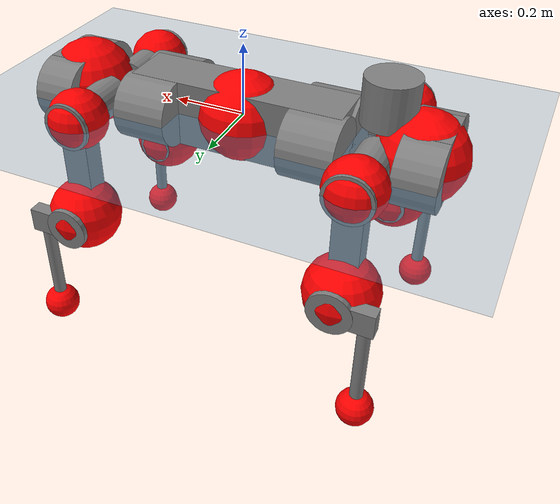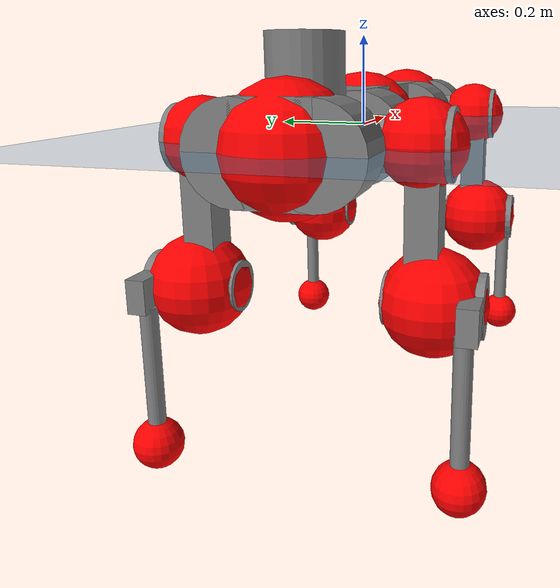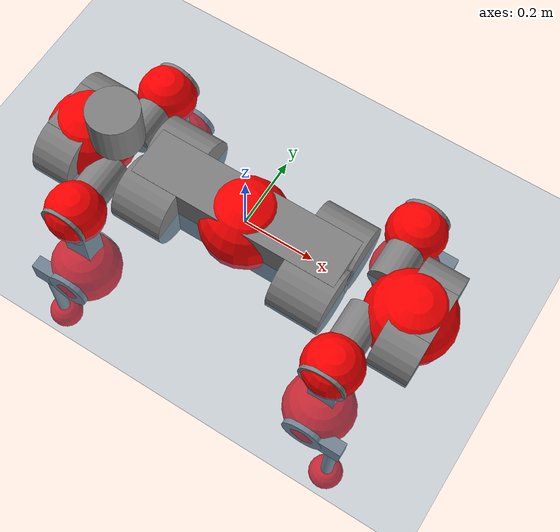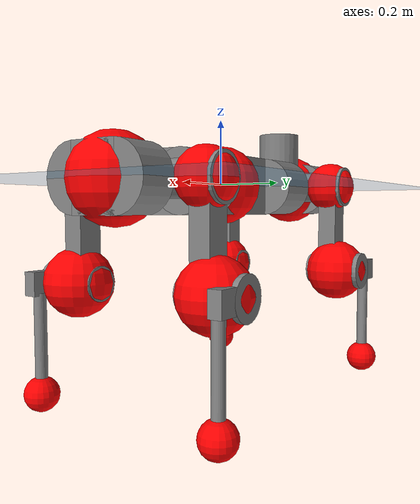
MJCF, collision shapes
<mujoco model="anymal_c">
  <compiler angle="radian" assetdir="assets" balanceinertia="true" inertiafromgeom="false"/>

  <option timestep="0.005" density="1.2" viscosity="2e-05"/>

  <size nkey="1"/>

  <visual>
    <quality shadowsize="8192"/>
    <map shadowclip="0.5"/>
  </visual>

  <default>
    <default class="/">
      <material specular="0" shininess="0.25"/>
      <geom contype="0" conaffinity="0" group="1" solref="-1000 -80"/>
      <site size="0.01 0.005 0.005" group="5"/>
      <general forcelimited="true" forcerange="-80 80" biastype="affine" gainprm="80" biasprm="0 -80 -2"/>
      <default class="anymal_c">
        <joint armature="0.01" damping="0.01" frictionloss="0.1"/>
        <default class="visual">
          <geom type="mesh" group="2"/>
          <default class="visual_zflip"/>
        </default>
        <default class="collision">
          <geom type="cylinder" group="3"/>
          <default class="foot">
            <geom size="0.03 0 0" type="sphere" condim="6" priority="1" friction="0.8 0.02 0.01" solimp="0.015 1 0.03"/>
          </default>
        </default>
      </default>
      <default class="reward_collision_sphere">
        <geom group="5" rgba="1 0 0 1"/>
      </default>
    </default>
  </default>

  <asset>
    <texture type="skybox" colorspace="auto" name="//unnamed_texture_0" builtin="gradient" rgb1="0.95 0.95 0.95" rgb2="0.95 0.95 0.95" width="100" height="600"/>
    <texture type="2d" colorspace="auto" name="texplane" builtin="checker" rgb1="0.345 0.575 0.748" rgb2="0.345 0.575 0.748" markrgb="1 1 1" width="512" height="512"/>
    <texture type="2d" colorspace="linear" name="base" file="base.png"/>
    <texture type="2d" colorspace="linear" name="top_shell" file="top_shell.png"/>
    <texture type="2d" colorspace="linear" name="bottom_shell" file="bottom_shell.png"/>
    <texture type="2d" colorspace="linear" name="remote" file="remote.png"/>
    <texture type="2d" colorspace="linear" name="hatch" file="hatch.png"/>
    <texture type="2d" colorspace="linear" name="handle" file="handle.png"/>
    <texture type="2d" colorspace="linear" name="face" file="face.png"/>
    <texture type="2d" colorspace="linear" name="battery" file="battery.png"/>
    <texture type="2d" colorspace="linear" name="lidar_cage" file="lidar_cage.png"/>
    <texture type="2d" colorspace="linear" name="depth_camera" file="depth_camera.png"/>
    <texture type="2d" colorspace="linear" name="wide_angle_camera" file="wide_angle_camera.png"/>
    <texture type="2d" colorspace="linear" name="lidar" file="lidar.png"/>
    <texture type="2d" colorspace="linear" name="drive" file="drive.png"/>
    <texture type="2d" colorspace="linear" name="hip_l" file="hip_l.png"/>
    <texture type="2d" colorspace="linear" name="shank_l" file="shank_l.png"/>
    <texture type="2d" colorspace="linear" name="foot" file="foot.png"/>
    <texture type="2d" colorspace="linear" name="thigh" file="thigh.png"/>
    <texture type="2d" colorspace="linear" name="shank_r" file="shank_r.png"/>
    <texture type="2d" colorspace="linear" name="hip_r" file="hip_r.png"/>
    <material name="MatPlane" class="/" texture="texplane" texuniform="true" texrepeat="2 2" specular="0.9" shininess="0.5"/>
    <material name="black_plastic" class="/" rgba="0.007 0.007 0.007 1"/>
    <material name="green" class="/" rgba="0.052 0.178 0.033 1"/>
    <material name="red" class="/" rgba="0.178 0.006 0.005 1"/>
    <material name="yellow" class="/" rgba="0.178 0.119 0.006 1"/>
    <material name="lwl" class="/" rgba="0.8 0.8 0.8 1"/>
    <material name="base" class="/" texture="base"/>
    <material name="top_shell" class="/" texture="top_shell"/>
    <material name="bottom_shell" class="/" texture="bottom_shell"/>
    <material name="hip_l" class="/" texture="hip_l"/>
    <material name="thigh" class="/" texture="thigh"/>
    <material name="shank_l" class="/" texture="shank_l"/>
    <material name="foot" class="/" texture="foot"/>
    <material name="hip_r" class="/" texture="hip_r"/>
    <material name="shank" class="/" texture="shank_r"/>
    <material name="hatch" class="/" texture="hatch"/>
    <material name="remote" class="/" texture="remote"/>
    <material name="handle" class="/" texture="handle"/>
    <material name="face" class="/" texture="face"/>
    <material name="depth_camera" class="/" texture="depth_camera"/>
    <material name="wide_angle_camera" class="/" texture="wide_angle_camera"/>
    <material name="battery" class="/" texture="battery"/>
    <material name="lidar_cage" class="/" texture="lidar_cage"/>
    <material name="lidar" class="/" texture="lidar"/>
    <material name="drive" class="/" texture="drive"/>
    <mesh name="base_0" class="/" file="base_0.obj"/>
    <mesh name="base_1" class="/" file="base_1.obj"/>
    <mesh name="base_2" class="/" file="base_2.obj"/>
    <mesh name="base_3" class="/" file="base_3.obj"/>
    <mesh name="base_4" class="/" file="base_4.obj"/>
    <mesh name="base_5" class="/" file="base_5.obj"/>
    <mesh name="top_shell" class="/" file="top_shell.obj"/>
    <mesh name="bottom_shell" class="/" file="bottom_shell.obj"/>
    <mesh name="remote" class="/" file="remote.obj"/>
    <mesh name="handle" class="/" file="handle.obj"/>
    <mesh name="face" class="/" file="face.obj"/>
    <mesh name="wide_angle_camera" class="/" file="wide_angle_camera.obj"/>
    <mesh name="depth_camera" class="/" file="depth_camera.obj"/>
    <mesh name="battery" class="/" file="battery.obj"/>
    <mesh name="lidar_cage" class="/" file="lidar_cage.obj"/>
    <mesh name="lidar" class="/" file="lidar.obj"/>
    <mesh name="drive" class="/" file="drive.obj"/>
    <mesh name="hip_l" class="/" file="hip_l.obj"/>
    <mesh name="thigh" class="/" file="thigh.obj"/>
    <mesh name="shank_l" class="/" file="shank_l.obj"/>
    <mesh name="foot" class="/" file="foot.obj"/>
    <mesh name="hip_r" class="/" file="hip_r.obj"/>
    <mesh name="hatch" class="/" file="hatch.obj"/>
    <mesh name="shank_r" class="/" file="shank_r.obj"/>
  </asset>

  <worldbody>
    <geom name="floor" class="/" size="100 100 0.125" type="plane" group="0" material="MatPlane"/>
    <light name="toplight_shadow" class="/" pos="0 0 5" dir="0.0990148 0.0990148 -0.990148" type="directional" ambient="0.04 0.04 0.04" diffuse="0.55 0.55 0.55" specular="0.12 0.12 0.12"/>
    <light name="toplight_fill" class="/" pos="0 0 5" dir="0.0990148 0.0990148 -0.990148" type="directional" castshadow="false" ambient="0.04 0.04 0.04" diffuse="0.3 0.3 0.3" specular="0.08 0.08 0.08"/>
    <body name="trunk" childclass="anymal_c" pos="-0.000169353 -0.000331862 -0.00263738" quat="0.999999 -0.00103509 -6.59756e-05 -0.000739226">
      <inertial pos="0.00304146 0.00189567 0.0504688" quat="0.500737 0.501523 0.507455 0.490129" mass="20.8157" diaginertia="0.947393 0.604958 0.242021"/>
      <joint name="//unnamed_joint_0" type="free" armature="0" damping="0" frictionloss="0"/>
      <geom name="//unnamed_geom_1" class="visual" material="green" mesh="base_0"/>
      <geom name="//unnamed_geom_2" class="visual" material="yellow" mesh="base_1"/>
      <geom name="//unnamed_geom_3" class="visual" material="red" mesh="base_2"/>
      <geom name="//unnamed_geom_4" class="visual" material="black_plastic" mesh="base_3"/>
      <geom name="//unnamed_geom_5" class="visual" material="lwl" mesh="base_4"/>
      <geom name="//unnamed_geom_6" class="visual" material="base" mesh="base_5"/>
      <geom name="trunk_1" class="collision" size="0.297142 0.0717238 0.0922164" type="box"/>
      <geom name="trunk_2" class="collision" size="0.0922164 0.0742854" pos="0.23369 0.0689803 0" quat="0.707107 0 0.707107 0"/>
      <geom name="trunk_3" class="collision" size="0.0922164 0.0742854" pos="-0.23369 0.0689803 0" quat="0.707107 0 0.707107 0"/>
      <geom name="trunk_4" class="collision" size="0.0922164 0.0742854" pos="0.23369 -0.0689803 0" quat="0.707107 0 0.707107 0"/>
      <geom name="trunk_5" class="collision" size="0.0922164 0.0742854" pos="-0.23369 -0.0689803 0" quat="0.707107 0 0.707107 0"/>
      <geom name="//unnamed_geom_12" class="visual" material="top_shell" mesh="top_shell"/>
      <geom name="//unnamed_geom_13" class="visual" material="bottom_shell" mesh="bottom_shell"/>
      <geom name="//unnamed_geom_14" class="visual" material="remote" mesh="remote"/>
      <geom name="//unnamed_geom_15" class="visual" material="handle" mesh="handle"/>
      <geom name="//unnamed_geom_16" class="visual" pos="0.445354 0 0" quat="1 0 0 0" material="face" mesh="face"/>
      <geom name="trunk_6" class="collision" size="0.0563544 0.0717238 0.0922164" pos="0.504448 0 0" type="box"/>
      <geom name="//unnamed_geom_18" class="collision" size="0.0922164 0.0563544" pos="0.504448 0.0689803 0" quat="0.707107 0 0.707107 0"/>
      <geom name="//unnamed_geom_19" class="collision" size="0.0922164 0.0563544" pos="0.504448 -0.0689803 0" quat="0.707107 0 0.707107 0"/>
      <geom name="//unnamed_geom_20" class="visual" pos="0.496011 0 -0.0291498" quat="0.965926 0 0.258819 0" material="depth_camera" mesh="depth_camera"/>
      <geom name="//unnamed_geom_21" class="visual" pos="0.551185 0 0.0151797" material="wide_angle_camera" mesh="wide_angle_camera"/>
      <geom name="//unnamed_geom_22" class="visual_zflip" pos="-0.445354 0 0" quat="0 0 0 1" material="face" mesh="face"/>
      <geom name="trunk_7" class="collision" size="0.0563544 0.0717238 0.0922164" pos="-0.504448 0 0" quat="0 0 0 1" type="box"/>
      <geom name="//unnamed_geom_24" class="collision" size="0.0922164 0.0563544" pos="-0.504448 -0.0689803 0" quat="0 -0.707107 0 0.707107"/>
      <geom name="//unnamed_geom_25" class="collision" size="0.0922164 0.0563544" pos="-0.504448 0.0689803 0" quat="0 -0.707107 0 0.707107"/>
      <geom name="//unnamed_geom_26" class="visual" pos="-0.496011 0 -0.0291498" quat="0 -0.258819 0 0.965926" material="depth_camera" mesh="depth_camera"/>
      <geom name="//unnamed_geom_27" class="visual_zflip" pos="-0.551185 0 0.0151797" quat="0 0 0 1" material="wide_angle_camera" mesh="wide_angle_camera"/>
      <geom name="//unnamed_geom_28" class="visual" material="battery" mesh="battery"/>
      <geom name="//unnamed_geom_29" class="visual" pos="0 0.0741758 0.0299162" quat="0.683013 -0.183013 0.183013 0.683013" material="depth_camera" mesh="depth_camera"/>
      <geom name="//unnamed_geom_30" class="visual" pos="0 -0.0741758 0.0299162" quat="0.683013 0.183013 0.183013 -0.683013" material="depth_camera" mesh="depth_camera"/>
      <geom name="//unnamed_geom_31" class="visual" pos="-0.391095 0 0.0745297" quat="1 0 0 0" material="lidar_cage" mesh="lidar_cage"/>
      <geom name="trunk_8" class="collision" size="0.0717238 0.0614776" pos="-0.391095 0 0.13537"/>
      <geom name="//unnamed_geom_33" class="visual" pos="-0.391095 -3.49667e-05 0.144192" quat="0.707107 0 0 -0.707107" material="lidar" mesh="lidar"/>
      <geom name="//unnamed_geom_34" class="visual" pos="0.322223 0.102495 -4.9295e-10" quat="0.258819 0.965926 0 0" material="drive" mesh="drive"/>
      <geom name="//unnamed_geom_35" class="visual" pos="0.322223 -0.102495 4.9295e-10" quat="0.258819 -0.965926 0 0" material="drive" mesh="drive"/>
      <geom name="//unnamed_geom_36" class="visual" pos="-0.322223 0.102495 4.9295e-10" quat="0 0 0.965926 -0.258819" material="drive" mesh="drive"/>
      <geom name="//unnamed_geom_37" class="visual" pos="-0.322223 -0.102495 -4.9295e-10" quat="0 0 -0.965926 -0.258819" material="drive" mesh="drive"/>
      <geom name="//unnamed_geom_38" class="visual" pos="0.124635 0 0.0740227" quat="1 0 0 0" material="hatch" mesh="hatch"/>
      <geom name="//unnamed_geom_39" class="reward_collision_sphere" size="0.122955"/>
      <geom name="//unnamed_geom_40" class="reward_collision_sphere" size="0.122955" pos="0.483496 0 0"/>
      <geom name="//unnamed_geom_41" class="reward_collision_sphere" size="0.122955" pos="-0.483496 0 0"/>
      <site name="imu" pos="0.263237 0.0115283 0.0374311" size="0.0102463"/>
      <camera name="track" pos="0 -1.97087 0" quat="0.707107 0.707107 0 0" mode="trackcom"/>
      <camera name="ego_camera" pos="0.483496 0 -0.0405604" quat="-0.5 -0.5 0.5 0.5"/>
      <body name="LF_HIP" pos="0.322527 0.102304 0.0016679" quat="0.258798 0.965931 -2.13327e-05 -8.70968e-06">
        <inertial pos="0.0584824 -0.0151088 -0.0108168" quat="-0.130264 0.704673 -0.125503 0.686087" mass="2.9653" diaginertia="0.00849736 0.00459692 0.00349917"/>
        <joint name="LF_HAA" pos="0 0 0" axis="0.999961 -0.00109335 -0.00871113" range="-0.715931 0.494813" armature="0.0103155" damping="0.00187766" frictionloss="0.103862"/>
        <geom name="//unnamed_geom_42" class="visual" pos="0 -2.8998e-05 4.7629e-06" quat="0.258819 -0.965926 0 0" material="hip_l" mesh="hip_l"/>
        <geom name="//unnamed_geom_43" class="visual" pos="0.0643587 -0.0768226 -0.0445649" quat="0.183013 -0.683013 0.683013 0.183013" material="drive" mesh="drive"/>
        <geom name="//unnamed_geom_44" class="collision" size="0.0512313 0.0717238" pos="0.0643587 -0.0117856 -0.00700174" quat="-0.353553 -0.612372 0.612372 -0.353553"/>
        <body name="LF_THIGH" pos="0.0627997 -0.0710422 -0.0405802" quat="0.182878 -0.682869 0.683218 0.182915">
          <inertial pos="0.0332644 -0.000106661 -0.249638" quat="0.992906 -0.0029152 -0.0795081 0.0883653" mass="3.16612" diaginertia="0.0415742 0.0269658 0.00424392"/>
          <joint name="LF_HFE" pos="0 0 0" axis="0.999997 0.00118846 0.00206579" stiffness="0.00317079" range="-3.1556 3.13616" armature="0.00951136" damping="0.0155255" frictionloss="0.102197"/>
          <geom name="//unnamed_geom_45" class="visual" pos="0.0017708 2.79036e-06 0" quat="0.707107 0 0 -0.707107" material="thigh" mesh="thigh"/>
          <geom name="//unnamed_geom_46" class="collision" size="0.0666007 0.040985" pos="0.0429774 0 0" quat="0.5 0.5 -0.5 -0.5"/>
          <geom name="//unnamed_geom_47" class="collision" size="0.0384235 0.0307388 0.144794" pos="0.0322331 0 -0.143294" quat="0.707107 0 0 -0.707107" type="box"/>
          <geom name="//unnamed_geom_48" class="visual" pos="0.107766 0 -0.288993" quat="1 0 0 0" material="drive" mesh="drive"/>
          <geom name="//unnamed_geom_49" class="collision" size="0.0512313 0.0717238" pos="0.0325554 0 -0.288993" quat="0.707107 0 0.707107 0"/>
          <geom name="//unnamed_geom_50" class="reward_collision_sphere" size="0.0819701" pos="0.0268609 0 0"/>
          <body name="LF_SHANK" pos="0.106715 -0.000209244 -0.289731" quat="1 -3.1502e-05 9.39253e-06 6.8552e-05">
            <inertial pos="0.00323869 -0.0629128 -0.0816434" quat="0.992994 -0.114915 0.000449229 -0.0275331" mass="0.626858" diaginertia="0.0140118 0.00855274 0.00119771"/>
            <joint name="LF_KFE" pos="0 0 0" axis="0.999987 -0.00512729 0.000550082" stiffness="0.000526717" range="-3.19253 3.15155" armature="0.0106525" damping="0.0138722" frictionloss="0.115986"/>
            <geom name="//unnamed_geom_51" class="visual" pos="0.000577419 0.00307883 0" quat="0.707107 0 0 -0.707107" material="shank_l" mesh="shank_l"/>
            <geom name="LF_kfe_act" class="collision" size="0.0614776 0.0204925" pos="0.0214887 0 0" quat="0.5 0.5 -0.5 -0.5"/>
            <geom name="//unnamed_geom_53" class="collision" size="0.058915 0.0345811 0.0194679" pos="0.0214887 -0.0566614 0" quat="0.5 0.5 -0.5 -0.5" type="box"/>
            <geom name="//unnamed_geom_54" class="visual" pos="0.0140212 -0.0856767 -0.342705" quat="0.382683 0 0 -0.92388" material="foot" mesh="foot"/>
            <geom name="LF_calf" class="collision" size="0.017931 0.14473" pos="0.0140214 -0.0866688 -0.171352" quat="0.707107 0 0 -0.707107"/>
            <geom name="LF_foot" class="foot" size="0.0304823" pos="0.0140214 -0.0866688 -0.31989" quat="0.707107 0 0 -0.707107"/>
            <geom name="//unnamed_geom_57" class="reward_collision_sphere" size="0.102463" pos="-0.0537218 0 0"/>
            <geom name="//unnamed_geom_58" class="reward_collision_sphere" size="0.0512313" pos="0.0140214 -0.0866688 -0.31989"/>
            <site name="LF_foot" class="foot" pos="0.0140214 -0.0866688 -0.31989" quat="0.707107 0 0 -0.707107" size="0.0102463"/>
          </body>
        </body>
      </body>
      <body name="RF_HIP" pos="0.322555 -0.103114 0.00114173" quat="0.259537 -0.965733 -0.000471345 -0.000832782">
        <inertial pos="0.0616652 0.0154463 -0.00800961" quat="0.148085 0.678403 0.125325 0.708614" mass="3.12826" diaginertia="0.00841819 0.00461813 0.00355617"/>
        <joint name="RF_HAA" pos="0 0 0" axis="1 1.33294e-05 -4.33151e-06" range="-0.545976 0.717588" armature="0.0097505" damping="0.00716342" frictionloss="0.108029"/>
        <geom name="//unnamed_geom_59" class="visual" pos="0 2.89978e-05 4.76289e-06" quat="0.258819 0.965926 0 0" material="hip_r" mesh="hip_r"/>
        <geom name="//unnamed_geom_60" class="visual" pos="0.0643587 0.0768226 -0.0445649" quat="0.183013 0.683013 0.683013 -0.183013" material="drive" mesh="drive"/>
        <geom name="//unnamed_geom_61" class="collision" size="0.0512313 0.0717238" pos="0.0643587 0.0117856 -0.00700174" quat="-0.353553 0.612372 0.612372 0.353553"/>
        <body name="RF_THIGH" pos="0.0648276 0.0704354 -0.0423887" quat="0.183144 0.683042 0.682944 -0.183028">
          <inertial pos="0.0333197 -0.000311779 -0.248012" quat="0.992321 -0.00202097 -0.0846003 0.0902065" mass="3.37067" diaginertia="0.0434863 0.0270021 0.00445664"/>
          <joint name="RF_HFE" pos="0 0 0" axis="0.999997 -0.00127092 -0.00187595" stiffness="0.0128631" range="-3.14021 3.12689" armature="0.0104353" damping="0" frictionloss="0.0924697"/>
          <geom name="//unnamed_geom_62" class="visual" pos="0.0017708 2.79036e-06 0" quat="0.707107 0 0 -0.707107" material="thigh" mesh="thigh"/>
          <geom name="//unnamed_geom_63" class="collision" size="0.0666007 0.040985" pos="0.0429774 0 0" quat="0.5 0.5 0.5 0.5"/>
          <geom name="//unnamed_geom_64" class="collision" size="0.0384235 0.0307388 0.144794" pos="0.0322331 0 -0.143294" quat="0.707107 0 0 0.707107" type="box"/>
          <geom name="//unnamed_geom_65" class="visual" pos="0.107766 0 -0.288993" quat="1 0 0 0" material="drive" mesh="drive"/>
          <geom name="//unnamed_geom_66" class="collision" size="0.0512313 0.0717238" pos="0.0325554 0 -0.288993" quat="0.707107 0 0.707107 0"/>
          <geom name="//unnamed_geom_67" class="reward_collision_sphere" size="0.0819701" pos="0.0268609 0 0"/>
          <body name="RF_SHANK" pos="0.104835 -0.000647414 -0.289442" quat="1 5.46768e-05 -0.000311954 0.000367607">
            <inertial pos="0.00703077 0.0579123 -0.0795693" quat="0.993195 0.112304 0.0111917 0.0287432" mass="0.617281" diaginertia="0.0140027 0.00856013 0.00114765"/>
            <joint name="RF_KFE" pos="0 0 0" axis="1 0.000259459 -5.8818e-05" range="-3.13219 3.14096" armature="0.0103254" damping="0" frictionloss="0.10234"/>
            <geom name="//unnamed_geom_68" class="visual" pos="0.000577416 -0.00307882 0" quat="0.707107 0 0 0.707107" material="shank" mesh="shank_r"/>
            <geom name="RF_kfe_act" class="collision" size="0.0614776 0.0204925" pos="0.0214887 0 0" quat="0.5 0.5 0.5 0.5"/>
            <geom name="//unnamed_geom_70" class="collision" size="0.058915 0.0345811 0.0194679" pos="0.0214887 0.0566614 0" quat="0.5 0.5 0.5 0.5" type="box"/>
            <geom name="//unnamed_geom_71" class="visual" pos="0.0140215 0.0856767 -0.342705" quat="0.382683 0 0 0.92388" material="foot" mesh="foot"/>
            <geom name="RF_calf" class="collision" size="0.017931 0.14473" pos="0.0140214 0.0866688 -0.171352" quat="0.707107 0 0 0.707107"/>
            <geom name="RF_foot" class="foot" size="0.0287159" pos="0.0140214 0.0866688 -0.31989" quat="0.707107 0 0 0.707107"/>
            <geom name="//unnamed_geom_74" class="reward_collision_sphere" size="0.102463" pos="-0.0537218 0 0"/>
            <geom name="//unnamed_geom_75" class="reward_collision_sphere" size="0.0512313" pos="0.0140214 0.0866688 -0.31989"/>
            <site name="RF_foot" class="foot" pos="0.0140214 0.0866688 -0.31989" quat="0.707107 0 0 0.707107" size="0.0102463"/>
          </body>
        </body>
      </body>
      <body name="LH_HIP" pos="-0.321443 0.101586 0.00232226" quat="0.000516239 0.000204697 0.965968 -0.258661">
        <inertial pos="0.0620497 0.0123506 -0.0111395" quat="0.137145 0.680661 0.127676 0.708231" mass="2.96536" diaginertia="0.00832543 0.00450343 0.00341893"/>
        <joint name="LH_HAA" pos="0 0 0" axis="0.999912 0.0132335 0.00120931" stiffness="0.000734782" range="-0.541674 0.773145" armature="0.0113979" damping="0.0134944" frictionloss="0.102512"/>
        <geom name="//unnamed_geom_76" class="visual" pos="0 2.89978e-05 4.76289e-06" quat="-0.258819 -0.965926 0 0" material="hip_r" mesh="hip_r"/>
        <geom name="//unnamed_geom_77" class="visual" pos="0.0643587 0.0768226 -0.0445649" quat="0.183013 0.683013 0.683013 -0.183013" material="drive" mesh="drive"/>
        <geom name="//unnamed_geom_78" class="collision" size="0.0512313 0.0717238" pos="0.0643587 0.0117856 -0.00700174" quat="-0.353553 0.612372 0.612372 0.353553"/>
        <body name="LH_THIGH" pos="0.0635738 0.06949 -0.0407144" quat="0.183872 0.682799 0.682859 -0.183522">
          <inertial pos="0.0358097 -0.00180876 -0.251537" quat="0.992764 -0.00532042 -0.0807875 0.0886825" mass="3.38639" diaginertia="0.0461459 0.0285418 0.00470994"/>
          <joint name="LH_HFE" pos="0 0 0" axis="0.999902 0.0135946 -0.00330543" range="-3.16545 3.15023" armature="0.010621" damping="0" frictionloss="0.101279"/>
          <geom name="//unnamed_geom_79" class="visual" pos="0.0017708 2.79036e-06 0" quat="0.707107 0 0 -0.707107" material="thigh" mesh="thigh"/>
          <geom name="//unnamed_geom_80" class="collision" size="0.0666007 0.040985" pos="0.0429774 0 0" quat="0.5 0.5 -0.5 -0.5"/>
          <geom name="//unnamed_geom_81" class="collision" size="0.0384235 0.0307388 0.144794" pos="0.0322331 0 -0.143294" quat="0.707107 0 0 -0.707107" type="box"/>
          <geom name="//unnamed_geom_82" class="visual" pos="0.107766 0 -0.288993" quat="1 0 0 0" material="drive" mesh="drive"/>
          <geom name="//unnamed_geom_83" class="collision" size="0.0512313 0.0717238" pos="0.0325554 0 -0.288993" quat="0.707107 0 0.707107 0"/>
          <geom name="//unnamed_geom_84" class="reward_collision_sphere" size="0.0819701" pos="0.0268609 0 0"/>
          <body name="LH_SHANK" pos="0.107069 0.000321919 -0.291048" quat="0.999999 0.000221998 -0.00099684 0.000497304">
            <inertial pos="0.00326428 0.0614139 -0.0843674" quat="0.993074 0.112041 -0.00879138 0.0342706" mass="0.625311" diaginertia="0.0143154 0.0084035 0.00117128"/>
            <joint name="LH_KFE" pos="0 0 0" axis="0.999972 -0.000539609 0.00741143" stiffness="0.0023417" range="-3.15198 3.08808" armature="0.0115604" damping="0" frictionloss="0.102742"/>
            <geom name="//unnamed_geom_85" class="visual" pos="0.000577416 -0.00307882 0" quat="-0.707107 0 0 -0.707107" material="shank" mesh="shank_r"/>
            <geom name="LH_kfe_act" class="collision" size="0.0614776 0.0204925" pos="0.0214887 0 0" quat="0.5 0.5 -0.5 -0.5"/>
            <geom name="//unnamed_geom_87" class="collision" size="0.058915 0.0345811 0.0194679" pos="0.0214887 0.0566614 0" quat="0.5 0.5 -0.5 -0.5" type="box"/>
            <geom name="//unnamed_geom_88" class="visual" pos="0.0140215 0.0856767 -0.342705" quat="-0.382683 0 0 -0.92388" material="foot" mesh="foot"/>
            <geom name="LH_calf" class="collision" size="0.017931 0.14473" pos="0.0140214 0.0866688 -0.171352" quat="0.707107 0 0 -0.707107"/>
            <geom name="LH_foot" class="foot" size="0.0314337" pos="0.0140214 0.0866688 -0.31989" quat="0.707107 0 0 -0.707107"/>
            <geom name="//unnamed_geom_91" class="reward_collision_sphere" size="0.102463" pos="-0.0537218 0 0"/>
            <geom name="//unnamed_geom_92" class="reward_collision_sphere" size="0.0512313" pos="0.0140214 0.0866688 -0.31989"/>
            <site name="LH_foot" class="foot" pos="0.0140214 0.0866688 -0.31989" quat="0.707107 0 0 -0.707107" size="0.0102463"/>
          </body>
        </body>
      </body>
      <body name="RH_HIP" pos="-0.319498 -0.102734 0.00276358" quat="1.87118e-05 8.07405e-06 -0.965919 -0.258845">
        <inertial pos="0.058842 -0.015954 -0.00865526" quat="-0.132622 0.713935 -0.14361 0.672372" mass="2.98915" diaginertia="0.00894269 0.00473409 0.00365759"/>
        <joint name="RH_HAA" pos="0 0 0" axis="0.999905 0.0133537 0.00354242" range="-0.722557 0.490973" armature="0.010317" damping="0.0111332" frictionloss="0.115971"/>
        <geom name="//unnamed_geom_93" class="visual" pos="0 -2.8998e-05 4.7629e-06" quat="-0.258819 0.965926 0 0" material="hip_l" mesh="hip_l"/>
        <geom name="//unnamed_geom_94" class="visual" pos="0.0643587 -0.0768226 -0.0445649" quat="-0.183013 0.683013 -0.683013 -0.183013" material="drive" mesh="drive"/>
        <geom name="//unnamed_geom_95" class="collision" size="0.0512313 0.0717238" pos="0.0643587 -0.0117856 -0.00700174" quat="0.353553 0.612372 -0.612372 0.353553"/>
        <body name="RH_THIGH" pos="0.064163 -0.0714221 -0.0435296" quat="-0.182768 0.683212 -0.682862 -0.183074">
          <inertial pos="0.0329501 -0.000365295 -0.251336" quat="0.992802 -0.00075813 -0.0845584 0.0848182" mass="3.23364" diaginertia="0.0451053 0.0282037 0.00448373"/>
          <joint name="RH_HFE" pos="0 0 0" axis="1 -0.000270407 -8.45082e-05" stiffness="0.00143461" range="-3.14009 3.10813" armature="0.0100284" damping="0.00981729" frictionloss="0.107949"/>
          <geom name="//unnamed_geom_96" class="visual" pos="0.0017708 2.79036e-06 0" quat="0.707107 0 0 -0.707107" material="thigh" mesh="thigh"/>
          <geom name="//unnamed_geom_97" class="collision" size="0.0666007 0.040985" pos="0.0429774 0 0" quat="0.5 0.5 0.5 0.5"/>
          <geom name="//unnamed_geom_98" class="collision" size="0.0384235 0.0307388 0.144794" pos="0.0322331 0 -0.143294" quat="0.707107 0 0 0.707107" type="box"/>
          <geom name="//unnamed_geom_99" class="visual" pos="0.107766 0 -0.288993" quat="1 0 0 0" material="drive" mesh="drive"/>
          <geom name="//unnamed_geom_100" class="collision" size="0.0512313 0.0717238" pos="0.0325554 0 -0.288993" quat="0.707107 0 0.707107 0"/>
          <geom name="//unnamed_geom_101" class="reward_collision_sphere" size="0.0819701" pos="0.0268609 0 0"/>
          <body name="RH_SHANK" pos="0.105072 0.00217797 -0.290671" quat="0.999999 0.00127827 -8.12886e-05 0.000136724">
            <inertial pos="0.00502851 -0.0602251 -0.0815791" quat="0.993116 -0.114276 0.0111445 -0.0232033" mass="0.646147" diaginertia="0.0148076 0.00870241 0.00117343"/>
            <joint name="RH_KFE" pos="0 0 0" axis="0.999885 0.0151733 -0.000731499" range="-3.07754 3.15604" armature="0.0100958" damping="0" frictionloss="0.1079"/>
            <geom name="//unnamed_geom_102" class="visual" pos="0.000577419 0.00307883 0" quat="0.707107 0 0 -0.707107" material="shank_l" mesh="shank_l"/>
            <geom name="RH_kfe_act" class="collision" size="0.0614776 0.0204925" pos="0.0214887 0 0" quat="0.5 0.5 0.5 0.5"/>
            <geom name="//unnamed_geom_104" class="collision" size="0.058915 0.0345811 0.0194679" pos="0.0214887 -0.0566614 0" quat="0.5 0.5 0.5 0.5" type="box"/>
            <geom name="//unnamed_geom_105" class="visual" pos="0.0140212 -0.0856767 -0.342705" quat="0.382683 0 0 -0.92388" material="foot" mesh="foot"/>
            <geom name="RH_calf" class="collision" size="0.017931 0.14473" pos="0.0140214 -0.0866688 -0.171352" quat="0.707107 0 0 0.707107"/>
            <geom name="RH_foot" class="foot" size="0.0307485" pos="0.0140214 -0.0866688 -0.31989" quat="0.707107 0 0 0.707107"/>
            <geom name="//unnamed_geom_108" class="reward_collision_sphere" size="0.102463" pos="-0.0537218 0 0"/>
            <geom name="//unnamed_geom_109" class="reward_collision_sphere" size="0.0512313" pos="0.0140214 -0.0866688 -0.31989"/>
            <site name="RH_foot" class="foot" pos="0.0140214 -0.0866688 -0.31989" quat="0.707107 0 0 0.707107" size="0.0102463"/>
          </body>
        </body>
      </body>
    </body>
  </worldbody>

  <contact>
    <pair class="/" geom1="floor" geom2="LF_foot" name="//unnamed_contact_0"/>
    <pair class="/" geom1="floor" geom2="RF_foot" name="//unnamed_contact_1"/>
    <pair class="/" geom1="floor" geom2="LH_foot" name="//unnamed_contact_2"/>
    <pair class="/" geom1="floor" geom2="RH_foot" name="//unnamed_contact_3"/>
  </contact>

  <actuator>
    <general name="LF_HAA" class="/" joint="LF_HAA" forcerange="-83.5146 83.5146" gainprm="82.6891" biasprm="0 -82.6891 -1.92664"/>
    <general name="LF_HFE" class="/" joint="LF_HFE" forcerange="-78.9352 78.9352" gainprm="82.6891" biasprm="0 -82.6891 -1.92664"/>
    <general name="LF_KFE" class="/" joint="LF_KFE" forcerange="-84.4063 84.4063" gainprm="82.6891" biasprm="0 -82.6891 -1.92664"/>
    <general name="RF_HAA" class="/" joint="RF_HAA" forcerange="-84.0776 84.0776" gainprm="82.6891" biasprm="0 -82.6891 -1.92664"/>
    <general name="RF_HFE" class="/" joint="RF_HFE" forcerange="-85.5039 85.5039" gainprm="82.6891" biasprm="0 -82.6891 -1.92664"/>
    <general name="RF_KFE" class="/" joint="RF_KFE" forcerange="-82.9276 82.9276" gainprm="82.6891" biasprm="0 -82.6891 -1.92664"/>
    <general name="LH_HAA" class="/" joint="LH_HAA" forcerange="-82.7873 82.7873" gainprm="82.6891" biasprm="0 -82.6891 -1.92664"/>
    <general name="LH_HFE" class="/" joint="LH_HFE" forcerange="-74.3159 74.3159" gainprm="82.6891" biasprm="0 -82.6891 -1.92664"/>
    <general name="LH_KFE" class="/" joint="LH_KFE" forcerange="-90.4178 90.4178" gainprm="82.6891" biasprm="0 -82.6891 -1.92664"/>
    <general name="RH_HAA" class="/" joint="RH_HAA" forcerange="-82.4848 82.4848" gainprm="82.6891" biasprm="0 -82.6891 -1.92664"/>
    <general name="RH_HFE" class="/" joint="RH_HFE" forcerange="-84.7165 84.7165" gainprm="82.6891" biasprm="0 -82.6891 -1.92664"/>
    <general name="RH_KFE" class="/" joint="RH_KFE" forcerange="-84.5554 84.5554" gainprm="82.6891" biasprm="0 -82.6891 -1.92664"/>
  </actuator>

  <sensor>
    <gyro site="imu" name="imu_angular_velocity"/>
    <velocimeter site="imu" name="imu_linear_velocity"/>
    <framelinvel objtype="site" objname="LF_foot" name="LF_foot_global_linear_velocity"/>
    <framelinvel objtype="site" objname="RF_foot" name="RF_foot_global_linear_velocity"/>
    <framelinvel objtype="site" objname="LH_foot" name="LH_foot_global_linear_velocity"/>
    <framelinvel objtype="site" objname="RH_foot" name="RH_foot_global_linear_velocity"/>
  </sensor>

  <keyframe>
    <key name="home" qpos="0 0 0.55 1 0 0 0 0 0.4 -0.8 0 -0.4 0.8 0 -0.4 0.8 0 0.4 -0.8"/>
  </keyframe>
</mujoco>
